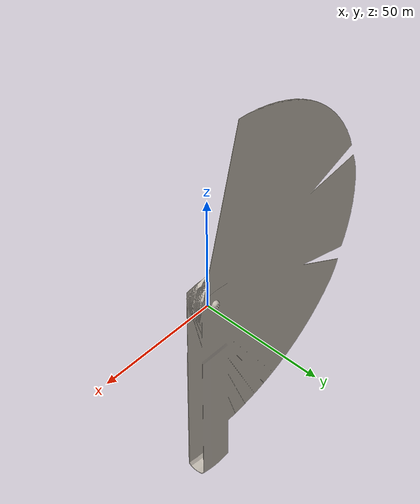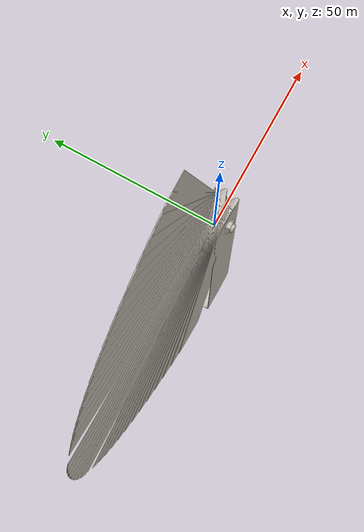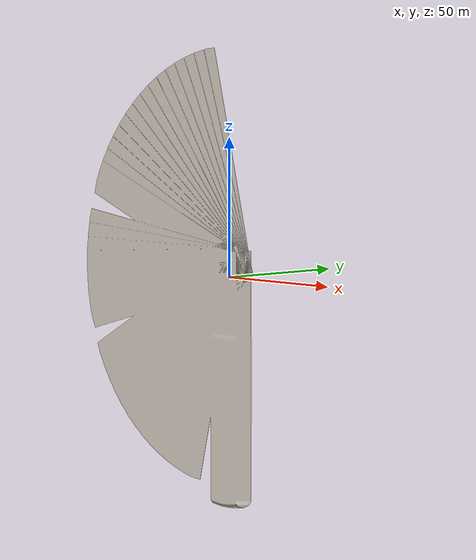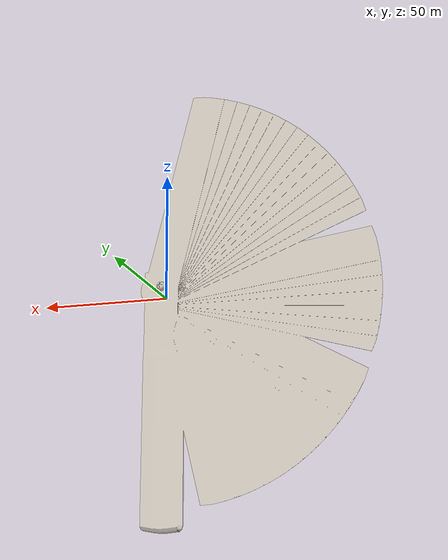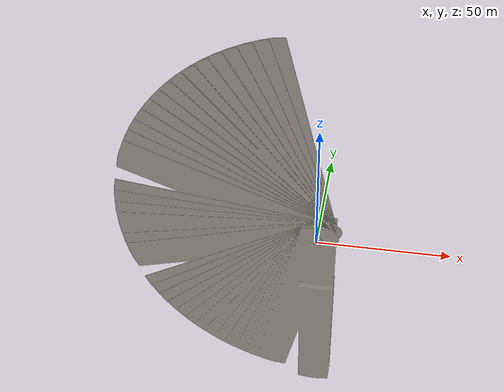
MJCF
<?xml version="1.0" encoding="utf-8"?>
<mujoco model="Gap gauge">
  <default>
    <default class="visual">
      <geom group="2" type="mesh" contype="0" conaffinity="0"/>
    </default>
    <default class="collision">
      <geom group="3" type="mesh"/>
    </default>
  </default>
  <asset>
    <texture type="2d" name="Gap gauge_BaseColor" file="Gap gauge/Gap gauge_BaseColor.png"/>
    <material name="material_0" texture="Gap gauge_BaseColor" specular="1.0" shininess="0.5"/>
    <mesh file="Gap gauge/Gap gauge.obj" name="Gap gauge"/>
    <mesh file="Gap gauge/Gap gauge_collision_0.obj" name="Gap gauge_collision_0"/>
    <mesh file="Gap gauge/Gap gauge_collision_1.obj" name="Gap gauge_collision_1"/>
    <mesh file="Gap gauge/Gap gauge_collision_2.obj" name="Gap gauge_collision_2"/>
    <mesh file="Gap gauge/Gap gauge_collision_3.obj" name="Gap gauge_collision_3"/>
    <mesh file="Gap gauge/Gap gauge_collision_4.obj" name="Gap gauge_collision_4"/>
  </asset>
  <worldbody>
    <body name="Gap gauge">
      <inertial mass="0.1" diaginertia="0.001 0.001 0.001" pos="0 0 0"/>
      <geom material="material_0" mesh="Gap gauge" class="visual"/>
      <geom mesh="Gap gauge_collision_0" rgba="0.33163750349239873 0.024653765145817963 0.4098672398810739 1" class="collision"/>
      <geom mesh="Gap gauge_collision_1" rgba="0.4016886174845067 0.43036732531948385 0.7047481176979143 1" class="collision"/>
      <geom mesh="Gap gauge_collision_2" rgba="0.8227430021122899 0.9539977976262182 0.291446714406419 1" class="collision"/>
      <geom mesh="Gap gauge_collision_3" rgba="0.6097870464423379 0.9640899088772967 0.9296874296893414 1" class="collision"/>
      <geom mesh="Gap gauge_collision_4" rgba="0.407785840783605 0.8521970353557442 0.7638335747596032 1" class="collision"/>
    </body>
  </worldbody>
</mujoco>
